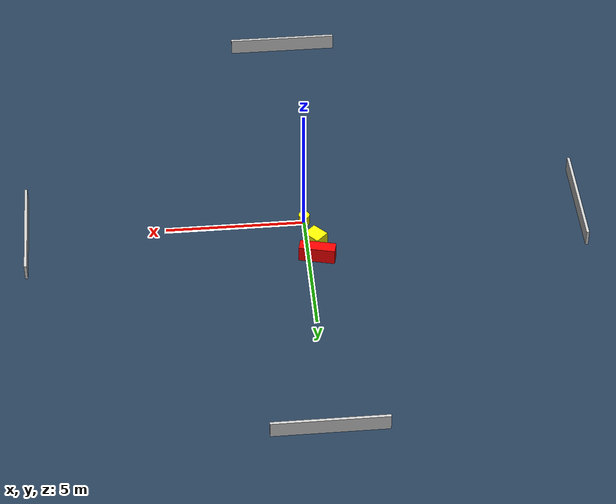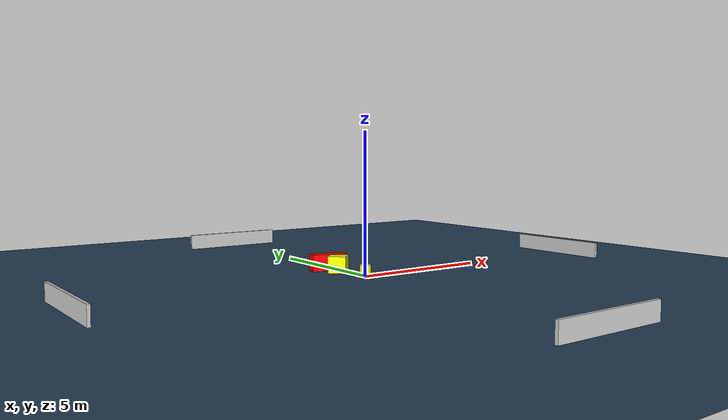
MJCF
<?xml version="1.0" ?>
<mujoco model="generated_environment">
  <option timestep="0.01" integrator="RK4" cone="elliptic"/>
  <default>
    <geom density="1"/>
  </default>
  <asset>
    <texture builtin="gradient" height="3072" name="skybox" rgb1="0.3 0.5 0.7" rgb2="0 0 0" type="skybox" width="512"/>
    <texture builtin="checker" height="300" name="groundplane" rgb1="0.2 0.3 0.4" rgb2="0.1 0.2 0.3" type="2d" width="300"/>
    <material name="groundplane" reflectance="0.2" texrepeat="5 5" texture="groundplane"/>
  </asset>
  <worldbody>
    <light dir="0 0 -1" directional="true" pos="0 0 1.5"/>
    <geom condim="3" friction="0.5 0.005 0.001" material="groundplane" name="floor" pos="0 0 0" size="0 0 0.05" type="plane"/>
    <body name="walls">
      <geom name="wall_1" condim="4" pos="-10.0 0.0 0.3" rgba="0.800000011920929 0.800000011920929 0.800000011920929 1.0" size="0.05 2.0 0.3" type="box"/>
      <geom name="wall_2" condim="4" pos="10.0 0.0 0.3" rgba="0.800000011920929 0.800000011920929 0.800000011920929 1.0" size="0.05 2.0 0.3" type="box"/>
      <geom name="wall_3" condim="4" pos="0.0 -10.0 0.3" rgba="0.800000011920929 0.800000011920929 0.800000011920929 1.0" size="2.0 0.05 0.3" type="box"/>
      <geom name="wall_4" condim="4" pos="0.0 10.0 0.3" rgba="0.800000011920929 0.800000011920929 0.800000011920929 1.0" size="2.0 0.05 0.3" type="box"/>
    </body>
    <body name="robot">
      <joint name="joint_x" type="slide" pos="0 0 0" axis="1 0 0"/>
      <joint name="joint_y" type="slide" pos="0 0 0" axis="0 1 0"/>
      <geom name="robot" type="cylinder" pos="0.0 0.0 0.2" size="0.2 0.2 0.0" mass="5.0" friction="1.0 0.005 0.0001" condim="4" rgba="1.0 1.0 0.0 1.0"/>
    </body>
    <body name="obstacle_1_movable">
      <geom name="obstacle_1_movable" condim="4" pos="-0.314141880734703 1.1953296973570113 0.3" euler="0 0 223.6982084806118" friction="0.0 0.005 0.001" rgba="1.0 1.0 0.0 1.0" size="0.2755532963060893 0.3149644139579676 0.3" type="box" mass="0.1"/>
      <joint type="free"/>
    </body>
    <body name="obstacle_2_static">
      <geom name="obstacle_2_static" condim="4" pos="-0.31573601070754265 1.8501909132552532 0.3" euler="0 0 256.82536022475097" friction="0.0 0.005 0.001" rgba="1.0 0.0 0.0 1.0" size="0.20927673859501744 0.6456625974460004 0.3" type="box"/>
    </body>
  </worldbody>
  <actuator>
    <motor name="actuator_x" joint="joint_x" gear="1" ctrlrange="-1 1"/>
    <motor name="actuator_y" joint="joint_y" gear="1" ctrlrange="-1 1"/>
  </actuator>
</mujoco>
